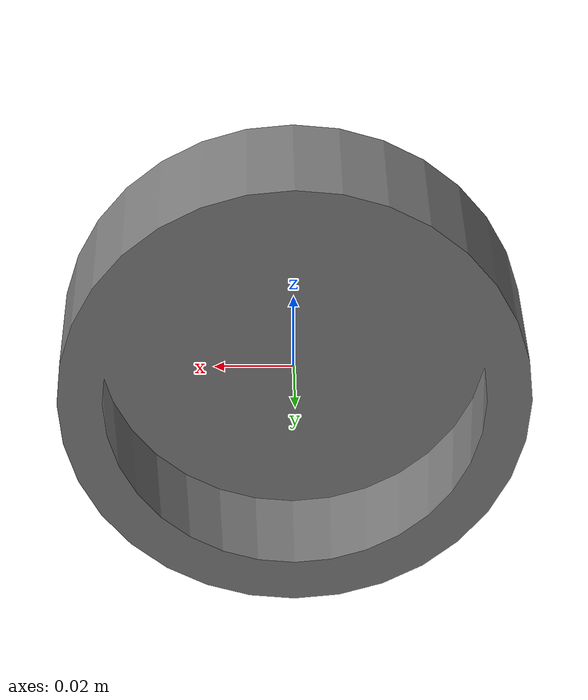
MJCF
<mujoco model="base_2">
  <default>
    <default class="visual">
      <geom group="2" type="mesh" contype="0" conaffinity="0"/>
    </default>
    <default class="collision">
      <geom group="3" type="mesh"/>
    </default>
  </default>
  <asset>
    <mesh file="base_2.obj"/>
    <mesh file="base_2_collision_0.obj"/>
    <mesh file="base_2_collision_1.obj"/>
    <mesh file="base_2_collision_2.obj"/>
    <mesh file="base_2_collision_3.obj"/>
    <mesh file="base_2_collision_4.obj"/>
    <mesh file="base_2_collision_5.obj"/>
    <mesh file="base_2_collision_6.obj"/>
    <mesh file="base_2_collision_7.obj"/>
    <mesh file="base_2_collision_8.obj"/>
    <mesh file="base_2_collision_9.obj"/>
    <mesh file="base_2_collision_10.obj"/>
    <mesh file="base_2_collision_11.obj"/>
    <mesh file="base_2_collision_12.obj"/>
    <mesh file="base_2_collision_13.obj"/>
    <mesh file="base_2_collision_14.obj"/>
  </asset>
  <worldbody>
    <body name="base_2">
      <geom mesh="base_2" class="visual"/>
      <geom mesh="base_2_collision_0" rgba="0.677440316127407 0.6107196624332555 0.5067222105654965 1" class="collision"/>
      <geom mesh="base_2_collision_1" rgba="0.633246107945888 0.2088557863155408 0.9657466012570125 1" class="collision"/>
      <geom mesh="base_2_collision_2" rgba="0.5874459076648499 0.5550085219769463 0.7209599926963233 1" class="collision"/>
      <geom mesh="base_2_collision_3" rgba="0.8572967843529231 0.2454940897085799 0.11099506224729838 1" class="collision"/>
      <geom mesh="base_2_collision_4" rgba="0.15764056757151712 0.8134272171579218 0.630952039054354 1" class="collision"/>
      <geom mesh="base_2_collision_5" rgba="0.6247342733270249 0.08467541425987835 0.13617092009234988 1" class="collision"/>
      <geom mesh="base_2_collision_6" rgba="0.40849151664221617 0.1569393715339975 0.8711627520801225 1" class="collision"/>
      <geom mesh="base_2_collision_7" rgba="0.5465945691553391 0.8088529767058528 0.4510646158470124 1" class="collision"/>
      <geom mesh="base_2_collision_8" rgba="0.6963223853513525 0.20892990355314534 0.4542471008163731 1" class="collision"/>
      <geom mesh="base_2_collision_9" rgba="0.35108716252727856 0.20128006541707255 0.3283485061453717 1" class="collision"/>
      <geom mesh="base_2_collision_10" rgba="0.5635445321154795 0.27871508892578334 0.8577834051549446 1" class="collision"/>
      <geom mesh="base_2_collision_11" rgba="0.18244089949368092 0.612025282378563 0.361943628182097 1" class="collision"/>
      <geom mesh="base_2_collision_12" rgba="0.2767518044030681 0.04940639887954179 0.17801273052847622 1" class="collision"/>
      <geom mesh="base_2_collision_13" rgba="0.9540955915473092 0.7181972027523527 0.8280661427632113 1" class="collision"/>
      <geom mesh="base_2_collision_14" rgba="0.07341377653404557 0.9308253852564025 0.3677551635895071 1" class="collision"/>
    </body>
  </worldbody>
</mujoco>
